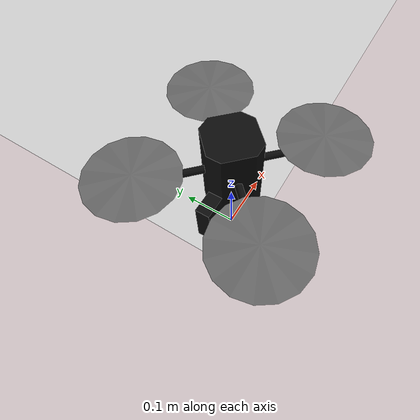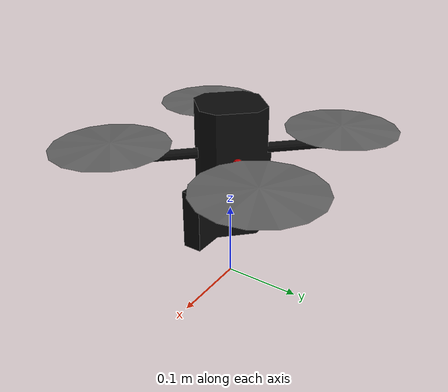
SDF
<?xml version="1.0"?>
<sdf version="1.4">
  <world name="default">
    <!-- Ground Plane -->
    <include>
      <uri>model://modelcity</uri>
    </include>
    <!-- Light Source -->
    <light type="directional" name="sun">
      <cast_shadows>true</cast_shadows>
      <pose>0 0 5 0 0 0</pose>
      <diffuse>0.8 0.8 0.8 1</diffuse>
      <specular>0.2 0.2 0.2 1</specular>
      <attenuation>
        <range>1000</range>
        <constant>0.9</constant>
        <linear>0.01</linear>
        <quadratic>0.001</quadratic>
      </attenuation>
      <direction>1 1 -1</direction>
    </light>
    <include>
      <uri>model://quadrotor</uri>
    </include>
    <plugin name="gazebo_rosmatlab_bridge" filename="libgazebo_rosmatlab_bridge.so">
      <links>quadrotor::link</links>
		</plugin>
  </world>
</sdf>

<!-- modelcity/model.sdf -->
<sdf version="1.4">
  <model name="model_city">
    <static>true</static>
    <link name="link">
      <collision name="collision">
        <geometry>
          <mesh>
            <uri>model://modelcity/meshes/city-cool.dae</uri>
          </mesh>
        </geometry>
      </collision>
      <visual name="visual_1">
        <cast_shadows>false</cast_shadows>
        <plugin name="trajectory_visualizer" filename="libtrajectory_visualizer.so"/>
        <geometry>
          <mesh>
            <uri>model://modelcity/meshes/city-cool.dae</uri>
          </mesh>
        </geometry>
      </visual>
    </link>
  </model>
</sdf>

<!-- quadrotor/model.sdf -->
<sdf version="1.5">
  <model name="quadrotor">
    <link name="link">
      <pose>0 0 0.182466 0 0 0</pose>
      <inertial>
        <mass>1.316</mass>
        <inertia>
          <ixx>0.0128</ixx>
          <ixy>0</ixy>
          <ixz>0</ixz>
          <iyy>0.0128</iyy>
          <iyz>0</iyz>
          <izz>0.0218</izz>
        </inertia>
      </inertial>
      <collision name="collision">
        <geometry>
          <mesh>
            <uri>model://../model_source/models/quadrotor/meshes/quadrotor_base.dae</uri>
          </mesh>
        </geometry>
      </collision>
      <visual name="visual">
        <geometry>
          <mesh>
            <uri>model://../model_source/models/quadrotor/meshes/quadrotor_base.dae</uri>
          </mesh>
        </geometry>
      </visual>
    </link>
  </model>
</sdf>
